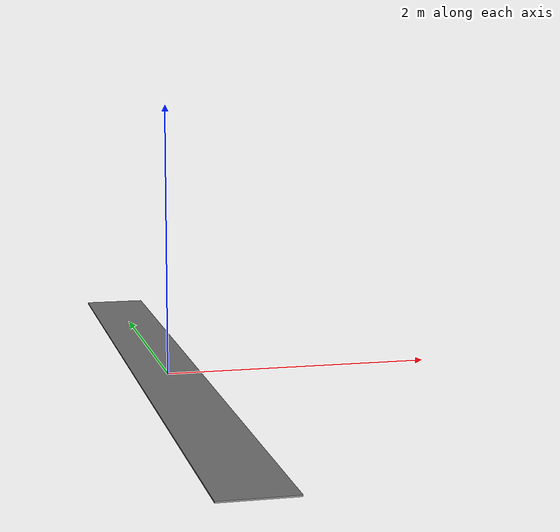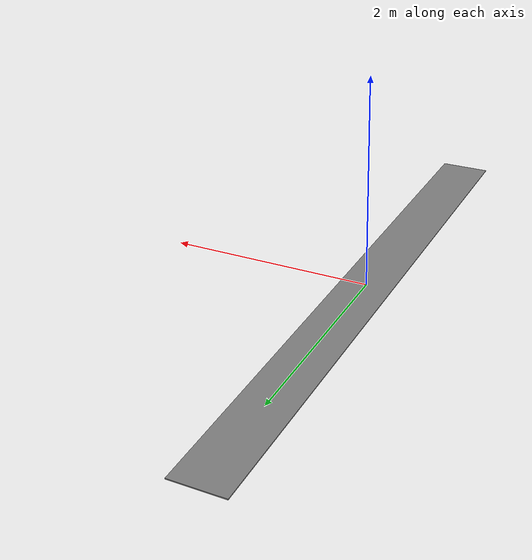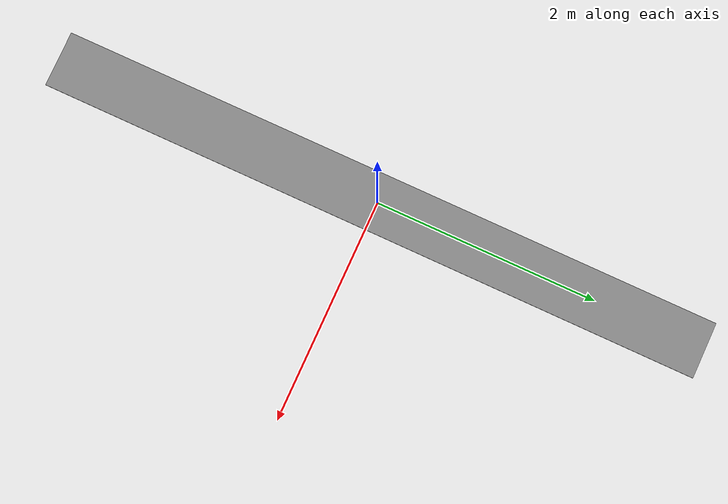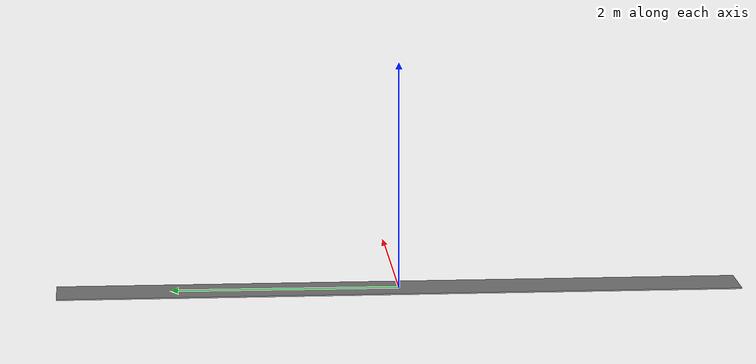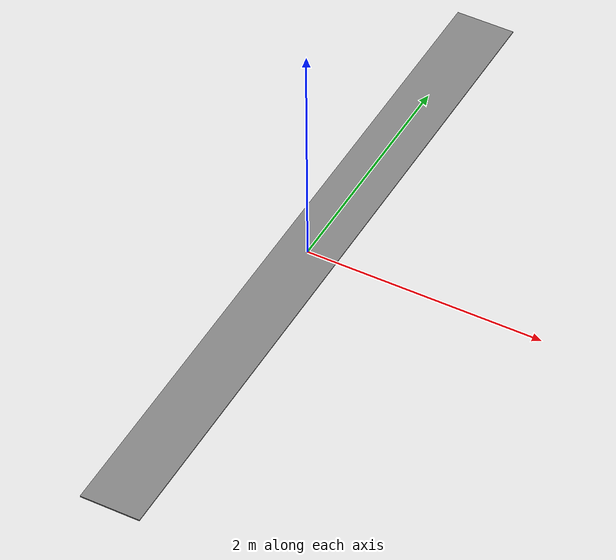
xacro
<?xml version="1.0"?>
<robot xmlns:xacro="http://ros.org/wiki/xacro" name="conveyor">

    <xacro:arg name="belt_length"    default="6.0"/>   <!-- along Y (travel) -->
    <xacro:arg name="belt_width"     default="0.5"/>   <!-- along X -->
    <xacro:arg name="belt_thickness" default="0.01"/>  <!-- top slab -->

    <xacro:property name="belt_length"    value="$(arg belt_length)"/>
    <xacro:property name="belt_width"     value="$(arg belt_width)"/>
    <xacro:property name="belt_thickness" value="$(arg belt_thickness)"/>
    <xacro:property name="belt_mass"      value="5.0"/>  <!-- placeholder until real belt hardware is chosen -->

    <link name="conveyor_base_link">
        <visual>
            <origin xyz="0 0 ${-belt_thickness/2}" rpy="0 0 0"/>
            <geometry>
                <box size="${belt_width} ${belt_length} ${belt_thickness}"/>
            </geometry>
            <material name="conveyor_belt_dark">
                <color rgba="0.5 0.5 0.5 1.0"/>
            </material>
        </visual>
        <collision>
            <origin xyz="0 0 ${-belt_thickness/2}" rpy="0 0 0"/>
            <geometry>
                <box size="${belt_width} ${belt_length} ${belt_thickness}"/>
            </geometry>
        </collision>
        <inertial>
            <mass value="${belt_mass}"/>
            <origin xyz="0 0 ${-belt_thickness/2}" rpy="0 0 0"/>
            <inertia
                    ixx="${(belt_mass/12.0)*(belt_length*belt_length + belt_thickness*belt_thickness)}" ixy="0" ixz="0"
                    iyy="${(belt_mass/12.0)*(belt_width*belt_width   + belt_thickness*belt_thickness)}" iyz="0"
                    izz="${(belt_mass/12.0)*(belt_width*belt_width   + belt_length*belt_length)}"/>
        </inertial>
    </link>

</robot>
